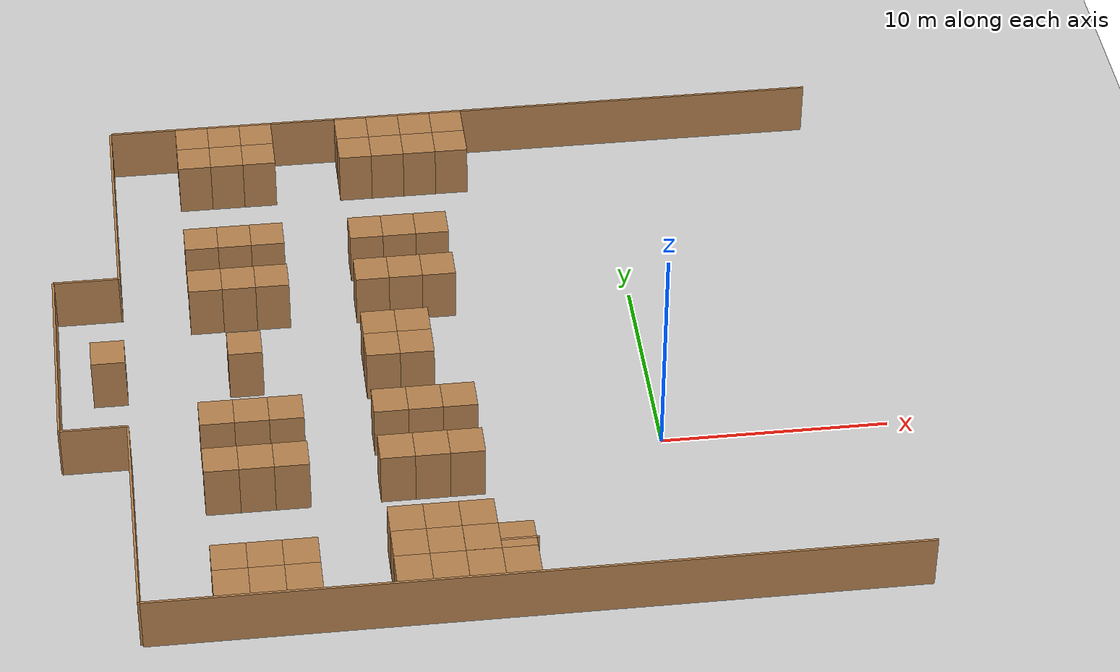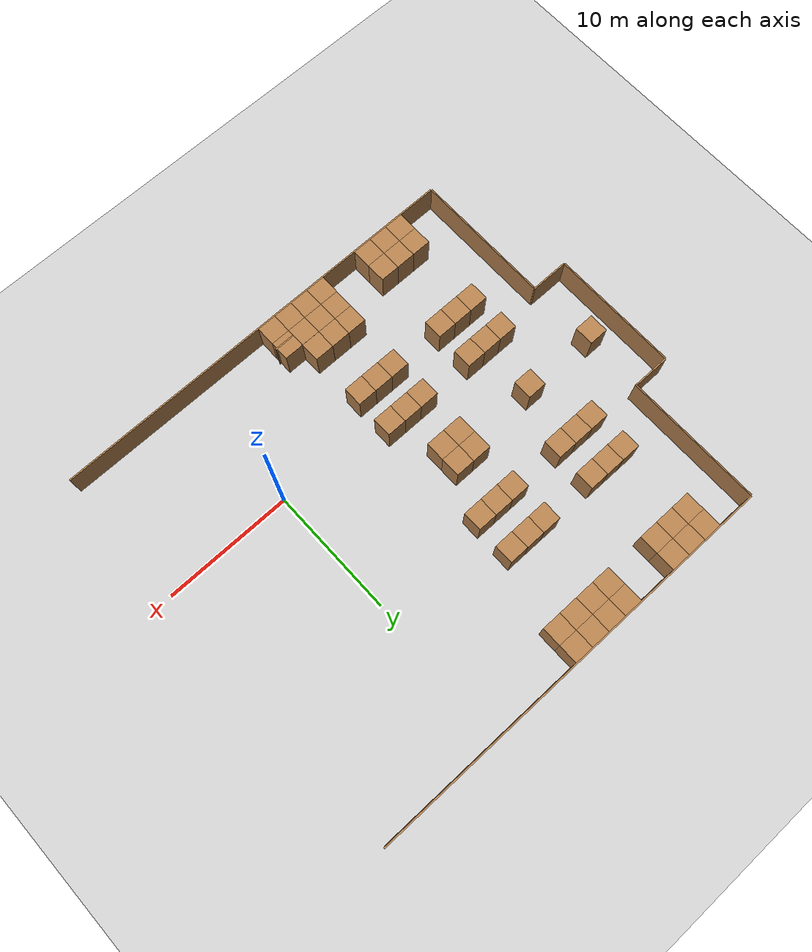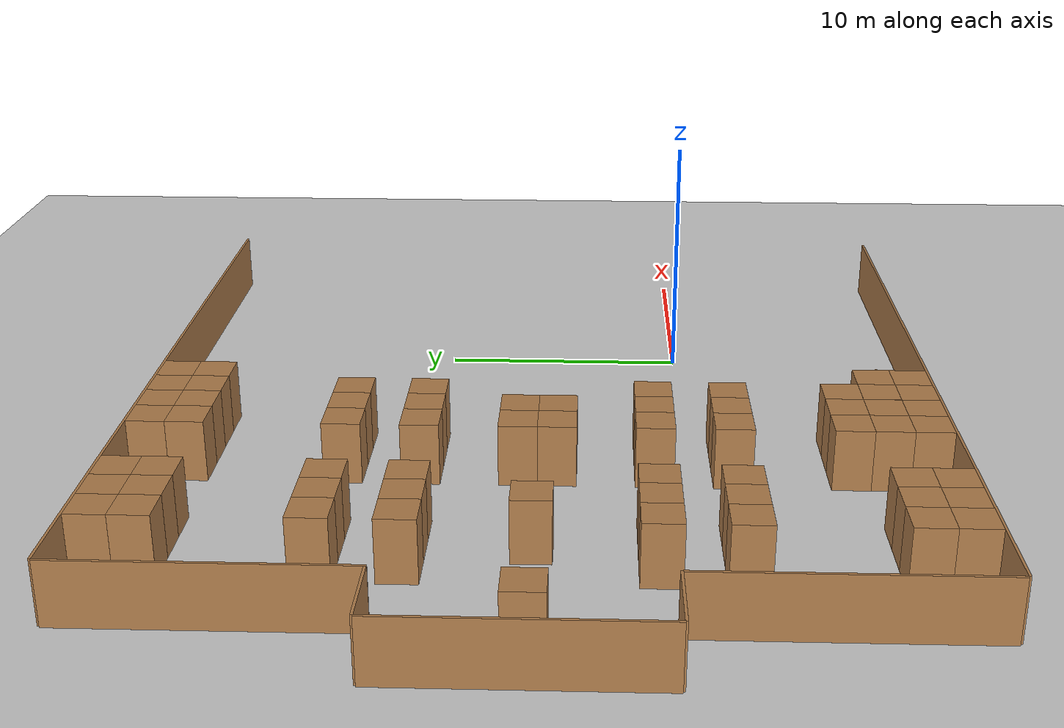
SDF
<sdf version="1.6">
 <world name="default">
  <model name="ground_plane">
   <static>1</static>
   <link name="link">
    <collision name="collision">
     <geometry><plane><normal>0 0 1</normal><size>100 100</size></plane></geometry>
     <surface><friction><ode><mu>100</mu><mu2>50</mu2></ode></friction></surface>
    </collision>
    <visual name="visual">
     <cast_shadows>0</cast_shadows>
     <geometry><plane><normal>0 0 1</normal><size>100 100</size></plane></geometry>
     <material>
      <script><uri>file://media/materials/scripts/gazebo.material</uri><name>Gazebo/Grey</name></script>
     </material>
    </visual>
   </link>
  </model>
  <model name="wall_1.5_1.5_4_clone_clone_4_clone_5">
   <pose>-7.25 -9.25 0 0 -0 0</pose>
   <link name="Wall_2">
    <collision name="Wall_2_Collision">
     <geometry><box><size>1.5 1.5 2.5</size></box></geometry>
     <pose>0 0 1.25 0 -0 0</pose>
    </collision>
    <visual name="Wall_2_Visual">
     <pose>0 0 1.25 0 -0 0</pose>
     <geometry><box><size>1.5 1.5 2.5</size></box></geometry>
     <material>
      <script><uri>file://media/materials/scripts/gazebo.material</uri><name>Gazebo/Wood</name></script>
      <ambient>1 1 1 1</ambient>
     </material>
    </visual>
   </link>
   <static>1</static>
  </model>
  <model name="wall_1.5_1.5_4_clone_clone_4_clone_6">
   <pose>-7.25 -7.75 0 0 -0 0</pose>
   <link name="Wall_2">
    <collision name="Wall_2_Collision">
     <geometry><box><size>1.5 1.5 2.5</size></box></geometry>
     <pose>0 0 1.25 0 -0 0</pose>
    </collision>
    <visual name="Wall_2_Visual">
     <pose>0 0 1.25 0 -0 0</pose>
     <geometry><box><size>1.5 1.5 2.5</size></box></geometry>
     <material>
      <script><uri>file://media/materials/scripts/gazebo.material</uri><name>Gazebo/Wood</name></script>
      <ambient>1 1 1 1</ambient>
     </material>
    </visual>
   </link>
   <static>1</static>
  </model>
  <model name="wall_1.5_1.5_4_clone_clone_4_clone_7">
   <pose>-8.75 -9.25 0 0 -0 0</pose>
   <link name="Wall_2">
    <collision name="Wall_2_Collision">
     <geometry><box><size>1.5 1.5 2.5</size></box></geometry>
     <pose>0 0 1.25 0 -0 0</pose>
    </collision>
    <visual name="Wall_2_Visual">
     <pose>0 0 1.25 0 -0 0</pose>
     <geometry><box><size>1.5 1.5 2.5</size></box></geometry>
     <material>
      <script><uri>file://media/materials/scripts/gazebo.material</uri><name>Gazebo/Wood</name></script>
      <ambient>1 1 1 1</ambient>
     </material>
    </visual>
   </link>
   <static>1</static>
  </model>
  <model name="wall_1.5_1.5_4_clone_clone_4_clone_8">
   <pose>-8.75 -7.75 0.005554 0 -0 0</pose>
   <link name="Wall_2">
    <collision name="Wall_2_Collision">
     <geometry><box><size>1.5 1.5 2.5</size></box></geometry>
     <pose>0 0 1.25 0 -0 0</pose>
    </collision>
    <visual name="Wall_2_Visual">
     <pose>0 0 1.25 0 -0 0</pose>
     <geometry><box><size>1.5 1.5 2.5</size></box></geometry>
     <material>
      <script><uri>file://media/materials/scripts/gazebo.material</uri><name>Gazebo/Wood</name></script>
      <ambient>1 1 1 1</ambient>
     </material>
    </visual>
   </link>
   <static>1</static>
  </model>
  <model name="wall_1.5_1.5_4_clone_clone_4_clone_7_clone">
   <pose>-10.25 -9.25 0 0 -0 0</pose>
   <link name="Wall_2">
    <collision name="Wall_2_Collision">
     <geometry><box><size>1.5 1.5 2.5</size></box></geometry>
     <pose>0 0 1.25 0 -0 0</pose>
    </collision>
    <visual name="Wall_2_Visual">
     <pose>0 0 1.25 0 -0 0</pose>
     <geometry><box><size>1.5 1.5 2.5</size></box></geometry>
     <material>
      <script><uri>file://media/materials/scripts/gazebo.material</uri><name>Gazebo/Wood</name></script>
      <ambient>1 1 1 1</ambient>
     </material>
    </visual>
   </link>
   <static>1</static>
  </model>
  <model name="wall_1.5_1.5_4_clone_clone_4_clone_7_clone_0">
   <pose>-10.25 -7.75 0 0 -0 0</pose>
   <link name="Wall_2">
    <collision name="Wall_2_Collision">
     <geometry><box><size>1.5 1.5 2.5</size></box></geometry>
     <pose>0 0 1.25 0 -0 0</pose>
    </collision>
    <visual name="Wall_2_Visual">
     <pose>0 0 1.25 0 -0 0</pose>
     <geometry><box><size>1.5 1.5 2.5</size></box></geometry>
     <material>
      <script><uri>file://media/materials/scripts/gazebo.material</uri><name>Gazebo/Wood</name></script>
      <ambient>1 1 1 1</ambient>
     </material>
    </visual>
   </link>
   <static>1</static>
  </model>
  <model name="wall_1.5_1.5_4_clone_clone_4_clone_7_clone_1">
   <pose>-10.25 -6.25 0 0 -0 0</pose>
   <link name="Wall_2">
    <collision name="Wall_2_Collision">
     <geometry><box><size>1.5 1.5 2.5</size></box></geometry>
     <pose>0 0 1.25 0 -0 0</pose>
    </collision>
    <visual name="Wall_2_Visual">
     <pose>0 0 1.25 0 -0 0</pose>
     <geometry><box><size>1.5 1.5 2.5</size></box></geometry>
     <material>
      <script><uri>file://media/materials/scripts/gazebo.material</uri><name>Gazebo/Wood</name></script>
      <ambient>1 1 1 1</ambient>
     </material>
    </visual>
   </link>
   <static>1</static>
  </model>
  <model name="wall_1.5_1.5_4_clone_clone_4_clone_7_clone_2">
   <pose>-8.75 -6.25 0 0 -0 0</pose>
   <link name="Wall_2">
    <collision name="Wall_2_Collision">
     <geometry><box><size>1.5 1.5 2.5</size></box></geometry>
     <pose>0 0 1.25 0 -0 0</pose>
    </collision>
    <visual name="Wall_2_Visual">
     <pose>0 0 1.25 0 -0 0</pose>
     <geometry><box><size>1.5 1.5 2.5</size></box></geometry>
     <material>
      <script><uri>file://media/materials/scripts/gazebo.material</uri><name>Gazebo/Wood</name></script>
      <ambient>1 1 1 1</ambient>
     </material>
    </visual>
   </link>
   <static>1</static>
  </model>
  <model name="wall_1.5_1.5_6">
   <pose>-11.75 -9.25 0 0 -0 0</pose>
   <link name="Wall_2">
    <collision name="Wall_2_Collision">
     <geometry><box><size>1.5 1.5 2.5</size></box></geometry>
     <pose>0 0 1.25 0 -0 0</pose>
    </collision>
    <visual name="Wall_2_Visual">
     <pose>0 0 1.25 0 -0 0</pose>
     <geometry><box><size>1.5 1.5 2.5</size></box></geometry>
     <material>
      <script><uri>file://media/materials/scripts/gazebo.material</uri><name>Gazebo/Wood</name></script>
      <ambient>1 1 1 1</ambient>
     </material>
    </visual>
   </link>
   <static>1</static>
  </model>
  <model name="wall_1.5_1.5_4_clone_clone_4_clone_7_clone_4">
   <pose>-11.75 -7.75 0 0 -0 0</pose>
   <link name="Wall_2">
    <collision name="Wall_2_Collision">
     <geometry><box><size>1.5 1.5 2.5</size></box></geometry>
     <pose>0 0 1.25 0 -0 0</pose>
    </collision>
    <visual name="Wall_2_Visual">
     <pose>0 0 1.25 0 -0 0</pose>
     <geometry><box><size>1.5 1.5 2.5</size></box></geometry>
     <material>
      <script><uri>file://media/materials/scripts/gazebo.material</uri><name>Gazebo/Wood</name></script>
      <ambient>1 1 1 1</ambient>
     </material>
    </visual>
   </link>
   <static>1</static>
  </model>
  <model name="wall_1.5_1.5_4_clone_clone_4_clone_7_clone_5">
   <pose>-11.75 -6.25 0 0 -0 0</pose>
   <link name="Wall_2">
    <collision name="Wall_2_Collision">
     <geometry><box><size>1.5 1.5 2.5</size></box></geometry>
     <pose>0 0 1.25 0 -0 0</pose>
    </collision>
    <visual name="Wall_2_Visual">
     <pose>0 0 1.25 0 -0 0</pose>
     <geometry><box><size>1.5 1.5 2.5</size></box></geometry>
     <material>
      <script><uri>file://media/materials/scripts/gazebo.material</uri><name>Gazebo/Wood</name></script>
      <ambient>1 1 1 1</ambient>
     </material>
    </visual>
   </link>
   <static>1</static>
  </model>
  <model name="wall_1.5_1.5_7">
   <pose>-8.75 -1.75 0 0 -0 0</pose>
   <link name="Wall_2">
    <collision name="Wall_2_Collision">
     <geometry><box><size>1.5 1.5 2.5</size></box></geometry>
     <pose>0 0 1.25 0 -0 0</pose>
    </collision>
    <visual name="Wall_2_Visual">
     <pose>0 0 1.25 0 -0 0</pose>
     <geometry><box><size>1.5 1.5 2.5</size></box></geometry>
     <material>
      <script><uri>file://media/materials/scripts/gazebo.material</uri><name>Gazebo/Wood</name></script>
      <ambient>1 1 1 1</ambient>
     </material>
    </visual>
   </link>
   <static>1</static>
  </model>
  <model name="wall_1.5_1.5_4_clone_clone_4_clone_7_clone_3">
   <pose>-10.25 -1.75 0 0 -0 0</pose>
   <link name="Wall_2">
    <collision name="Wall_2_Collision">
     <geometry><box><size>1.5 1.5 2.5</size></box></geometry>
     <pose>0 0 1.25 0 -0 0</pose>
    </collision>
    <visual name="Wall_2_Visual">
     <pose>0 0 1.25 0 -0 0</pose>
     <geometry><box><size>1.5 1.5 2.5</size></box></geometry>
     <material>
      <script><uri>file://media/materials/scripts/gazebo.material</uri><name>Gazebo/Wood</name></script>
      <ambient>1 1 1 1</ambient>
     </material>
    </visual>
   </link>
   <static>1</static>
  </model>
  <model name="wall_1.5_1.5_4_clone_clone_4_clone_7_clone_6">
   <pose>-11.75 -1.75 0 0 -0 0</pose>
   <link name="Wall_2">
    <collision name="Wall_2_Collision">
     <geometry><box><size>1.5 1.5 2.5</size></box></geometry>
     <pose>0 0 1.25 0 -0 0</pose>
    </collision>
    <visual name="Wall_2_Visual">
     <pose>0 0 1.25 0 -0 0</pose>
     <geometry><box><size>1.5 1.5 2.5</size></box></geometry>
     <material>
      <script><uri>file://media/materials/scripts/gazebo.material</uri><name>Gazebo/Wood</name></script>
      <ambient>1 1 1 1</ambient>
     </material>
    </visual>
   </link>
   <static>1</static>
  </model>
  <model name="wall_1.5_1.5_4_clone_clone_4_clone_7_clone_9">
   <pose>-16.25 -9.25 0 0 -0 0</pose>
   <link name="Wall_2">
    <collision name="Wall_2_Collision">
     <geometry><box><size>1.5 1.5 2.5</size></box></geometry>
     <pose>0 0 1.25 0 -0 0</pose>
    </collision>
    <visual name="Wall_2_Visual">
     <pose>0 0 1.25 0 -0 0</pose>
     <geometry><box><size>1.5 1.5 2.5</size></box></geometry>
     <material>
      <script><uri>file://media/materials/scripts/gazebo.material</uri><name>Gazebo/Wood</name></script>
      <ambient>1 1 1 1</ambient>
     </material>
    </visual>
   </link>
   <static>1</static>
  </model>
  <model name="wall_1.5_1.5_4_clone_clone_4_clone_7_clone_9_clone">
   <pose>-17.75 -9.25 0 0 -0 0</pose>
   <link name="Wall_2">
    <collision name="Wall_2_Collision">
     <geometry><box><size>1.5 1.5 2.5</size></box></geometry>
     <pose>0 0 1.25 0 -0 0</pose>
    </collision>
    <visual name="Wall_2_Visual">
     <pose>0 0 1.25 0 -0 0</pose>
     <geometry><box><size>1.5 1.5 2.5</size></box></geometry>
     <material>
      <script><uri>file://media/materials/scripts/gazebo.material</uri><name>Gazebo/Wood</name></script>
      <ambient>1 1 1 1</ambient>
     </material>
    </visual>
   </link>
   <static>1</static>
  </model>
  <model name="wall_1.5_1.5_4_clone_clone_4_clone_7_clone_9_clone_0">
   <pose>-19.25 -9.25 0 0 -0 0</pose>
   <link name="Wall_2">
    <collision name="Wall_2_Collision">
     <geometry><box><size>1.5 1.5 2.5</size></box></geometry>
     <pose>0 0 1.25 0 -0 0</pose>
    </collision>
    <visual name="Wall_2_Visual">
     <pose>0 0 1.25 0 -0 0</pose>
     <geometry><box><size>1.5 1.5 2.5</size></box></geometry>
     <material>
      <script><uri>file://media/materials/scripts/gazebo.material</uri><name>Gazebo/Wood</name></script>
      <ambient>1 1 1 1</ambient>
     </material>
    </visual>
   </link>
   <static>1</static>
  </model>
  <model name="wall_1.5_1.5_4_clone_clone_4_clone_7_clone_9_clone_1">
   <pose>-19.25 -7.75 0 0 -0 0</pose>
   <link name="Wall_2">
    <collision name="Wall_2_Collision">
     <geometry><box><size>1.5 1.5 2.5</size></box></geometry>
     <pose>0 0 1.25 0 -0 0</pose>
    </collision>
    <visual name="Wall_2_Visual">
     <pose>0 0 1.25 0 -0 0</pose>
     <geometry><box><size>1.5 1.5 2.5</size></box></geometry>
     <material>
      <script><uri>file://media/materials/scripts/gazebo.material</uri><name>Gazebo/Wood</name></script>
      <ambient>1 1 1 1</ambient>
     </material>
    </visual>
   </link>
   <static>1</static>
  </model>
  <model name="wall_1.5_1.5_4_clone_clone_4_clone_7_clone_9_clone_2">
   <pose>-17.75 -7.75 0 0 -0 0</pose>
   <link name="Wall_2">
    <collision name="Wall_2_Collision">
     <geometry><box><size>1.5 1.5 2.5</size></box></geometry>
     <pose>0 0 1.25 0 -0 0</pose>
    </collision>
    <visual name="Wall_2_Visual">
     <pose>0 0 1.25 0 -0 0</pose>
     <geometry><box><size>1.5 1.5 2.5</size></box></geometry>
     <material>
      <script><uri>file://media/materials/scripts/gazebo.material</uri><name>Gazebo/Wood</name></script>
      <ambient>1 1 1 1</ambient>
     </material>
    </visual>
   </link>
   <static>1</static>
  </model>
  <model name="wall_1.5_1.5_4_clone_clone_4_clone_7_clone_9_clone_3">
   <pose>-16.25 -7.75 0 0 -0 0</pose>
   <link name="Wall_2">
    <collision name="Wall_2_Collision">
     <geometry><box><size>1.5 1.5 2.5</size></box></geometry>
     <pose>0 0 1.25 0 -0 0</pose>
    </collision>
    <visual name="Wall_2_Visual">
     <pose>0 0 1.25 0 -0 0</pose>
     <geometry><box><size>1.5 1.5 2.5</size></box></geometry>
     <material>
      <script><uri>file://media/materials/scripts/gazebo.material</uri><name>Gazebo/Wood</name></script>
      <ambient>1 1 1 1</ambient>
     </material>
    </visual>
   </link>
   <static>1</static>
  </model>
  <model name="wall_1.5_1.5_4_clone_clone_4_clone_13">
   <pose>-8.75 1.25 0 0 -0 0</pose>
   <link name="Wall_2">
    <collision name="Wall_2_Collision">
     <geometry><box><size>1.5 1.5 2.5</size></box></geometry>
     <pose>0 0 1.25 0 -0 0</pose>
    </collision>
    <visual name="Wall_2_Visual">
     <pose>0 0 1.25 0 -0 0</pose>
     <geometry><box><size>1.5 1.5 2.5</size></box></geometry>
     <material>
      <script><uri>file://media/materials/scripts/gazebo.material</uri><name>Gazebo/Wood</name></script>
      <ambient>1 1 1 1</ambient>
     </material>
    </visual>
   </link>
   <static>1</static>
  </model>
  <model name="wall_1.5_1.5_4_clone_clone_4_clone_13_clone">
   <pose>-10.25 1.25 0 0 -0 0</pose>
   <link name="Wall_2">
    <collision name="Wall_2_Collision">
     <geometry><box><size>1.5 1.5 2.5</size></box></geometry>
     <pose>0 0 1.25 0 -0 0</pose>
    </collision>
    <visual name="Wall_2_Visual">
     <pose>0 0 1.25 0 -0 0</pose>
     <geometry><box><size>1.5 1.5 2.5</size></box></geometry>
     <material>
      <script><uri>file://media/materials/scripts/gazebo.material</uri><name>Gazebo/Wood</name></script>
      <ambient>1 1 1 1</ambient>
     </material>
    </visual>
   </link>
   <static>1</static>
  </model>
  <model name="wall_1.5_1.5_4_clone_clone_4_clone_13_clone_0">
   <pose>-11.75 1.25 0 0 -0 0</pose>
   <link name="Wall_2">
    <collision name="Wall_2_Collision">
     <geometry><box><size>1.5 1.5 2.5</size></box></geometry>
     <pose>0 0 1.25 0 -0 0</pose>
    </collision>
    <visual name="Wall_2_Visual">
     <pose>0 0 1.25 0 -0 0</pose>
     <geometry><box><size>1.5 1.5 2.5</size></box></geometry>
     <material>
      <script><uri>file://media/materials/scripts/gazebo.material</uri><name>Gazebo/Wood</name></script>
      <ambient>1 1 1 1</ambient>
     </material>
    </visual>
   </link>
   <static>1</static>
  </model>
  <model name="wall_1.5_1.5_4_clone_clone_4_clone_7_clone_9_clone_1_clone">
   <pose>-16.25 -1.75 0 0 -0 0</pose>
   <link name="Wall_2">
    <collision name="Wall_2_Collision">
     <geometry><box><size>1.5 1.5 2.5</size></box></geometry>
     <pose>0 0 1.25 0 -0 0</pose>
    </collision>
    <visual name="Wall_2_Visual">
     <pose>0 0 1.25 0 -0 0</pose>
     <geometry><box><size>1.5 1.5 2.5</size></box></geometry>
     <material>
      <script><uri>file://media/materials/scripts/gazebo.material</uri><name>Gazebo/Wood</name></script>
      <ambient>1 1 1 1</ambient>
     </material>
    </visual>
   </link>
   <static>1</static>
  </model>
  <model name="wall_1.5_1.5_4_clone_clone_4_clone_7_clone_9_clone_1_clone_clone">
   <pose>-17.75 -1.75 0 0 -0 0</pose>
   <link name="Wall_2">
    <collision name="Wall_2_Collision">
     <geometry><box><size>1.5 1.5 2.5</size></box></geometry>
     <pose>0 0 1.25 0 -0 0</pose>
    </collision>
    <visual name="Wall_2_Visual">
     <pose>0 0 1.25 0 -0 0</pose>
     <geometry><box><size>1.5 1.5 2.5</size></box></geometry>
     <material>
      <script><uri>file://media/materials/scripts/gazebo.material</uri><name>Gazebo/Wood</name></script>
      <ambient>1 1 1 1</ambient>
     </material>
    </visual>
   </link>
   <static>1</static>
  </model>
  <model name="wall_1.5_1.5_4_clone_clone_4_clone_7_clone_9_clone_1_clone_clone_0">
   <pose>-19.25 -1.75 0 0 -0 0</pose>
   <link name="Wall_2">
    <collision name="Wall_2_Collision">
     <geometry><box><size>1.5 1.5 2.5</size></box></geometry>
     <pose>0 0 1.25 0 -0 0</pose>
    </collision>
    <visual name="Wall_2_Visual">
     <pose>0 0 1.25 0 -0 0</pose>
     <geometry><box><size>1.5 1.5 2.5</size></box></geometry>
     <material>
      <script><uri>file://media/materials/scripts/gazebo.material</uri><name>Gazebo/Wood</name></script>
      <ambient>1 1 1 1</ambient>
     </material>
    </visual>
   </link>
   <static>1</static>
  </model>
  <model name="wall_1.5_1.5_4_clone_clone_4_clone_7_clone_9_clone_1_clone_clone_1">
   <pose>-16.25 1.25 0 0 -0 0</pose>
   <link name="Wall_2">
    <collision name="Wall_2_Collision">
     <geometry><box><size>1.5 1.5 2.5</size></box></geometry>
     <pose>0 0 1.25 0 -0 0</pose>
    </collision>
    <visual name="Wall_2_Visual">
     <pose>0 0 1.25 0 -0 0</pose>
     <geometry><box><size>1.5 1.5 2.5</size></box></geometry>
     <material>
      <script><uri>file://media/materials/scripts/gazebo.material</uri><name>Gazebo/Wood</name></script>
      <ambient>1 1 1 1</ambient>
     </material>
    </visual>
   </link>
   <static>1</static>
  </model>
  <model name="wall_1.5_1.5_4_clone_clone_4_clone_7_clone_9_clone_1_clone_clone_1_clone">
   <pose>-17.75 1.25 0 0 -0 0</pose>
   <link name="Wall_2">
    <collision name="Wall_2_Collision">
     <geometry><box><size>1.5 1.5 2.5</size></box></geometry>
     <pose>0 0 1.25 0 -0 0</pose>
    </collision>
    <visual name="Wall_2_Visual">
     <pose>0 0 1.25 0 -0 0</pose>
     <geometry><box><size>1.5 1.5 2.5</size></box></geometry>
     <material>
      <script><uri>file://media/materials/scripts/gazebo.material</uri><name>Gazebo/Wood</name></script>
      <ambient>1 1 1 1</ambient>
     </material>
    </visual>
   </link>
   <static>1</static>
  </model>
  <model name="wall_1.5_1.5_4_clone_clone_4_clone_7_clone_9_clone_1_clone_clone_1_clone_0">
   <pose>-19.25 1.25 0 0 -0 0</pose>
   <link name="Wall_2">
    <collision name="Wall_2_Collision">
     <geometry><box><size>1.5 1.5 2.5</size></box></geometry>
     <pose>0 0 1.25 0 -0 0</pose>
    </collision>
    <visual name="Wall_2_Visual">
     <pose>0 0 1.25 0 -0 0</pose>
     <geometry><box><size>1.5 1.5 2.5</size></box></geometry>
     <material>
      <script><uri>file://media/materials/scripts/gazebo.material</uri><name>Gazebo/Wood</name></script>
      <ambient>1 1 1 1</ambient>
     </material>
    </visual>
   </link>
   <static>1</static>
  </model>
  <model name="wall_1.5_1.5_clone_clone_clone_clone_clone_clone_clone_clone_clone_1_clone_6">
   <pose>-7.25 19.25 0 0 -0 0</pose>
   <link name="Wall_2">
    <collision name="Wall_2_Collision">
     <geometry><box><size>1.5 1.5 2.5</size></box></geometry>
     <pose>0 0 1.25 0 -0 0</pose>
    </collision>
    <visual name="Wall_2_Visual">
     <pose>0 0 1.25 0 -0 0</pose>
     <geometry><box><size>1.5 1.5 2.5</size></box></geometry>
     <material>
      <script><uri>file://media/materials/scripts/gazebo.material</uri><name>Gazebo/Wood</name></script>
      <ambient>1 1 1 1</ambient>
     </material>
    </visual>
   </link>
   <static>1</static>
  </model>
  <model name="wall_1.5_1.5_clone_clone_clone_clone_clone_clone_clone_clone_clone_1_clone_7">
   <pose>-8.75 19.25 0 0 -0 0</pose>
   <link name="Wall_2">
    <collision name="Wall_2_Collision">
     <geometry><box><size>1.5 1.5 2.5</size></box></geometry>
     <pose>0 0 1.25 0 -0 0</pose>
    </collision>
    <visual name="Wall_2_Visual">
     <pose>0 0 1.25 0 -0 0</pose>
     <geometry><box><size>1.5 1.5 2.5</size></box></geometry>
     <material>
      <script><uri>file://media/materials/scripts/gazebo.material</uri><name>Gazebo/Wood</name></script>
      <ambient>1 1 1 1</ambient>
     </material>
    </visual>
   </link>
   <static>1</static>
  </model>
  <model name="wall_1.5_1.5_clone_clone_clone_clone_clone_clone_clone_clone_clone_1_clone_8">
   <pose>-10.25 19.25 0 0 -0 0</pose>
   <link name="Wall_2">
    <collision name="Wall_2_Collision">
     <geometry><box><size>1.5 1.5 2.5</size></box></geometry>
     <pose>0 0 1.25 0 -0 0</pose>
    </collision>
    <visual name="Wall_2_Visual">
     <pose>0 0 1.25 0 -0 0</pose>
     <geometry><box><size>1.5 1.5 2.5</size></box></geometry>
     <material>
      <script><uri>file://media/materials/scripts/gazebo.material</uri><name>Gazebo/Wood</name></script>
      <ambient>1 1 1 1</ambient>
     </material>
    </visual>
   </link>
   <static>1</static>
  </model>
  <model name="wall_1.5_1.5_clone_clone_clone_clone_clone_clone_clone_clone_clone_1_clone_9">
   <pose>-11.75 19.25 0 0 -0 0</pose>
   <link name="Wall_2">
    <collision name="Wall_2_Collision">
     <geometry><box><size>1.5 1.5 2.5</size></box></geometry>
     <pose>0 0 1.25 0 -0 0</pose>
    </collision>
    <visual name="Wall_2_Visual">
     <pose>0 0 1.25 0 -0 0</pose>
     <geometry><box><size>1.5 1.5 2.5</size></box></geometry>
     <material>
      <script><uri>file://media/materials/scripts/gazebo.material</uri><name>Gazebo/Wood</name></script>
      <ambient>1 1 1 1</ambient>
     </material>
    </visual>
   </link>
   <static>1</static>
  </model>
  <model name="wall_1.5_1.5_clone_clone_clone_clone_clone_clone_clone_clone_clone_1_clone_10">
   <pose>-11.75 20.75 0 0 -0 0</pose>
   <link name="Wall_2">
    <collision name="Wall_2_Collision">
     <geometry><box><size>1.5 1.5 2.5</size></box></geometry>
     <pose>0 0 1.25 0 -0 0</pose>
    </collision>
    <visual name="Wall_2_Visual">
     <pose>0 0 1.25 0 -0 0</pose>
     <geometry><box><size>1.5 1.5 2.5</size></box></geometry>
     <material>
      <script><uri>file://media/materials/scripts/gazebo.material</uri><name>Gazebo/Wood</name></script>
      <ambient>1 1 1 1</ambient>
     </material>
    </visual>
   </link>
   <static>1</static>
  </model>
  <model name="wall_1.5_1.5_clone_clone_clone_clone_clone_clone_clone_clone_clone_1_clone_11">
   <pose>-10.25 20.75 0 0 -0 0</pose>
   <link name="Wall_2">
    <collision name="Wall_2_Collision">
     <geometry><box><size>1.5 1.5 2.5</size></box></geometry>
     <pose>0 0 1.25 0 -0 0</pose>
    </collision>
    <visual name="Wall_2_Visual">
     <pose>0 0 1.25 0 -0 0</pose>
     <geometry><box><size>1.5 1.5 2.5</size></box></geometry>
     <material>
      <script><uri>file://media/materials/scripts/gazebo.material</uri><name>Gazebo/Wood</name></script>
      <ambient>1 1 1 1</ambient>
     </material>
    </visual>
   </link>
   <static>1</static>
  </model>
  <model name="wall_1.5_1.5_clone_clone_clone_clone_clone_clone_clone_clone_clone_1_clone_12">
   <pose>-8.75 20.75 0 0 -0 0</pose>
   <link name="Wall_2">
    <collision name="Wall_2_Collision">
     <geometry><box><size>1.5 1.5 2.5</size></box></geometry>
     <pose>0 0 1.25 0 -0 0</pose>
    </collision>
    <visual name="Wall_2_Visual">
     <pose>0 0 1.25 0 -0 0</pose>
     <geometry><box><size>1.5 1.5 2.5</size></box></geometry>
     <material>
      <script><uri>file://media/materials/scripts/gazebo.material</uri><name>Gazebo/Wood</name></script>
      <ambient>1 1 1 1</ambient>
     </material>
    </visual>
   </link>
   <static>1</static>
  </model>
  <model name="wall_1.5_1.5_clone_clone_clone_clone_clone_clone_clone_clone_clone_1_clone_13">
   <pose>-7.25 20.75 0 0 -0 0</pose>
   <link name="Wall_2">
    <collision name="Wall_2_Collision">
     <geometry><box><size>1.5 1.5 2.5</size></box></geometry>
     <pose>0 0 1.25 0 -0 0</pose>
    </collision>
    <visual name="Wall_2_Visual">
     <pose>0 0 1.25 0 -0 0</pose>
     <geometry><box><size>1.5 1.5 2.5</size></box></geometry>
     <material>
      <script><uri>file://media/materials/scripts/gazebo.material</uri><name>Gazebo/Wood</name></script>
      <ambient>1 1 1 1</ambient>
     </material>
    </visual>
   </link>
   <static>1</static>
  </model>
  <model name="wall_1.5_1.5_clone_clone_clone_clone_clone_clone_clone_clone_clone_1_clone_15">
   <pose>-8.75 13.25 0 0 -0 0</pose>
   <link name="Wall_2">
    <collision name="Wall_2_Collision">
     <geometry><box><size>1.5 1.5 2.5</size></box></geometry>
     <pose>0 0 1.25 0 -0 0</pose>
    </collision>
    <visual name="Wall_2_Visual">
     <pose>0 0 1.25 0 -0 0</pose>
     <geometry><box><size>1.5 1.5 2.5</size></box></geometry>
     <material>
      <script><uri>file://media/materials/scripts/gazebo.material</uri><name>Gazebo/Wood</name></script>
      <ambient>1 1 1 1</ambient>
     </material>
    </visual>
   </link>
   <static>1</static>
  </model>
  <model name="wall_1.5_1.5_clone_clone_clone_clone_clone_clone_clone_clone_clone_1_clone_16">
   <pose>-10.25 13.25 0 0 -0 0</pose>
   <link name="Wall_2">
    <collision name="Wall_2_Collision">
     <geometry><box><size>1.5 1.5 2.5</size></box></geometry>
     <pose>0 0 1.25 0 -0 0</pose>
    </collision>
    <visual name="Wall_2_Visual">
     <pose>0 0 1.25 0 -0 0</pose>
     <geometry><box><size>1.5 1.5 2.5</size></box></geometry>
     <material>
      <script><uri>file://media/materials/scripts/gazebo.material</uri><name>Gazebo/Wood</name></script>
      <ambient>1 1 1 1</ambient>
     </material>
    </visual>
   </link>
   <static>1</static>
  </model>
  <model name="wall_1.5_1.5_clone_clone_clone_clone_clone_clone_clone_clone_clone_1_clone_17">
   <pose>-11.75 13.25 0 0 -0 0</pose>
   <link name="Wall_2">
    <collision name="Wall_2_Collision">
     <geometry><box><size>1.5 1.5 2.5</size></box></geometry>
     <pose>0 0 1.25 0 -0 0</pose>
    </collision>
    <visual name="Wall_2_Visual">
     <pose>0 0 1.25 0 -0 0</pose>
     <geometry><box><size>1.5 1.5 2.5</size></box></geometry>
     <material>
      <script><uri>file://media/materials/scripts/gazebo.material</uri><name>Gazebo/Wood</name></script>
      <ambient>1 1 1 1</ambient>
     </material>
    </visual>
   </link>
   <static>1</static>
  </model>
  <model name="wall_1.5_1.5_clone_clone_clone_clone_clone_clone_clone_clone_clone_1_clone_18">
   <pose>-8.75 10.25 0 0 -0 0</pose>
   <link name="Wall_2">
    <collision name="Wall_2_Collision">
     <geometry><box><size>1.5 1.5 2.5</size></box></geometry>
     <pose>0 0 1.25 0 -0 0</pose>
    </collision>
    <visual name="Wall_2_Visual">
     <pose>0 0 1.25 0 -0 0</pose>
     <geometry><box><size>1.5 1.5 2.5</size></box></geometry>
     <material>
      <script><uri>file://media/materials/scripts/gazebo.material</uri><name>Gazebo/Wood</name></script>
      <ambient>1 1 1 1</ambient>
     </material>
    </visual>
   </link>
   <static>1</static>
  </model>
  <model name="wall_1.5_1.5_clone_clone_clone_clone_clone_clone_clone_clone_clone_1_clone_19">
   <pose>-10.25 10.25 0 0 -0 0</pose>
   <link name="Wall_2">
    <collision name="Wall_2_Collision">
     <geometry><box><size>1.5 1.5 2.5</size></box></geometry>
     <pose>0 0 1.25 0 -0 0</pose>
    </collision>
    <visual name="Wall_2_Visual">
     <pose>0 0 1.25 0 -0 0</pose>
     <geometry><box><size>1.5 1.5 2.5</size></box></geometry>
     <material>
      <script><uri>file://media/materials/scripts/gazebo.material</uri><name>Gazebo/Wood</name></script>
      <ambient>1 1 1 1</ambient>
     </material>
    </visual>
   </link>
   <static>1</static>
  </model>
  <model name="wall_1.5_1.5_clone_clone_clone_clone_clone_clone_clone_clone_clone_1_clone_20">
   <pose>-11.75 10.25 0 0 -0 0</pose>
   <link name="Wall_2">
    <collision name="Wall_2_Collision">
     <geometry><box><size>1.5 1.5 2.5</size></box></geometry>
     <pose>0 0 1.25 0 -0 0</pose>
    </collision>
    <visual name="Wall_2_Visual">
     <pose>0 0 1.25 0 -0 0</pose>
     <geometry><box><size>1.5 1.5 2.5</size></box></geometry>
     <material>
      <script><uri>file://media/materials/scripts/gazebo.material</uri><name>Gazebo/Wood</name></script>
      <ambient>1 1 1 1</ambient>
     </material>
    </visual>
   </link>
   <static>1</static>
  </model>
  <model name="wall_1.5_1.5_clone_clone_clone_clone_clone_clone_clone_clone_clone_1_clone_23">
   <pose>-16.25 20.75 0 0 -0 0</pose>
   <link name="Wall_2">
    <collision name="Wall_2_Collision">
     <geometry><box><size>1.5 1.5 2.5</size></box></geometry>
     <pose>0 0 1.25 0 -0 0</pose>
    </collision>
    <visual name="Wall_2_Visual">
     <pose>0 0 1.25 0 -0 0</pose>
     <geometry><box><size>1.5 1.5 2.5</size></box></geometry>
     <material>
      <script><uri>file://media/materials/scripts/gazebo.material</uri><name>Gazebo/Wood</name></script>
      <ambient>1 1 1 1</ambient>
     </material>
    </visual>
   </link>
   <static>1</static>
  </model>
  <model name="wall_1.5_1.5_clone_clone_clone_clone_clone_clone_clone_clone_clone_1_clone_23_clone">
   <pose>-16.25 19.25 0 0 -0 0</pose>
   <link name="Wall_2">
    <collision name="Wall_2_Collision">
     <geometry><box><size>1.5 1.5 2.5</size></box></geometry>
     <pose>0 0 1.25 0 -0 0</pose>
    </collision>
    <visual name="Wall_2_Visual">
     <pose>0 0 1.25 0 -0 0</pose>
     <geometry><box><size>1.5 1.5 2.5</size></box></geometry>
     <material>
      <script><uri>file://media/materials/scripts/gazebo.material</uri><name>Gazebo/Wood</name></script>
      <ambient>1 1 1 1</ambient>
     </material>
    </visual>
   </link>
   <static>1</static>
  </model>
  <model name="wall_1.5_1.5_clone_clone_clone_clone_clone_clone_clone_clone_clone_1_clone_23_clone_0">
   <pose>-17.75 20.75 0 0 -0 0</pose>
   <link name="Wall_2">
    <collision name="Wall_2_Collision">
     <geometry><box><size>1.5 1.5 2.5</size></box></geometry>
     <pose>0 0 1.25 0 -0 0</pose>
    </collision>
    <visual name="Wall_2_Visual">
     <pose>0 0 1.25 0 -0 0</pose>
     <geometry><box><size>1.5 1.5 2.5</size></box></geometry>
     <material>
      <script><uri>file://media/materials/scripts/gazebo.material</uri><name>Gazebo/Wood</name></script>
      <ambient>1 1 1 1</ambient>
     </material>
    </visual>
   </link>
   <static>1</static>
  </model>
  <model name="wall_1.5_1.5_clone_clone_clone_clone_clone_clone_clone_clone_clone_1_clone_23_clone_1">
   <pose>-17.75 19.25 0 0 -0 0</pose>
   <link name="Wall_2">
    <collision name="Wall_2_Collision">
     <geometry><box><size>1.5 1.5 2.5</size></box></geometry>
     <pose>0 0 1.25 0 -0 0</pose>
    </collision>
    <visual name="Wall_2_Visual">
     <pose>0 0 1.25 0 -0 0</pose>
     <geometry><box><size>1.5 1.5 2.5</size></box></geometry>
     <material>
      <script><uri>file://media/materials/scripts/gazebo.material</uri><name>Gazebo/Wood</name></script>
      <ambient>1 1 1 1</ambient>
     </material>
    </visual>
   </link>
   <static>1</static>
  </model>
  <model name="wall_1.5_1.5_clone_clone_clone_clone_clone_clone_clone_clone_clone_1_clone_23_clone_2">
   <pose>-19.25 19.25 0 0 -0 0</pose>
   <link name="Wall_2">
    <collision name="Wall_2_Collision">
     <geometry><box><size>1.5 1.5 2.5</size></box></geometry>
     <pose>0 0 1.25 0 -0 0</pose>
    </collision>
    <visual name="Wall_2_Visual">
     <pose>0 0 1.25 0 -0 0</pose>
     <geometry><box><size>1.5 1.5 2.5</size></box></geometry>
     <material>
      <script><uri>file://media/materials/scripts/gazebo.material</uri><name>Gazebo/Wood</name></script>
      <ambient>1 1 1 1</ambient>
     </material>
    </visual>
   </link>
   <static>1</static>
  </model>
  <model name="wall_1.5_1.5_clone_clone_clone_clone_clone_clone_clone_clone_clone_1_clone_23_clone_3">
   <pose>-19.25 20.75 0 0 -0 0</pose>
   <link name="Wall_2">
    <collision name="Wall_2_Collision">
     <geometry><box><size>1.5 1.5 2.5</size></box></geometry>
     <pose>0 0 1.25 0 -0 0</pose>
    </collision>
    <visual name="Wall_2_Visual">
     <pose>0 0 1.25 0 -0 0</pose>
     <geometry><box><size>1.5 1.5 2.5</size></box></geometry>
     <material>
      <script><uri>file://media/materials/scripts/gazebo.material</uri><name>Gazebo/Wood</name></script>
      <ambient>1 1 1 1</ambient>
     </material>
    </visual>
   </link>
   <static>1</static>
  </model>
  <model name="wall_1.5_1.5_clone_clone_clone_clone_clone_clone_clone_clone_clone_1_clone_23_clone_4">
   <pose>-16.25 13.25 0 0 -0 0</pose>
   <link name="Wall_2">
    <collision name="Wall_2_Collision">
     <geometry><box><size>1.5 1.5 2.5</size></box></geometry>
     <pose>0 0 1.25 0 -0 0</pose>
    </collision>
    <visual name="Wall_2_Visual">
     <pose>0 0 1.25 0 -0 0</pose>
     <geometry><box><size>1.5 1.5 2.5</size></box></geometry>
     <material>
      <script><uri>file://media/materials/scripts/gazebo.material</uri><name>Gazebo/Wood</name></script>
      <ambient>1 1 1 1</ambient>
     </material>
    </visual>
   </link>
   <static>1</static>
  </model>
  <model name="wall_1.5_1.5_clone_clone_clone_clone_clone_clone_clone_clone_clone_1_clone_23_clone_5">
   <pose>-16.25 10.25 0 0 -0 0</pose>
   <link name="Wall_2">
    <collision name="Wall_2_Collision">
     <geometry><box><size>1.5 1.5 2.5</size></box></geometry>
     <pose>0 0 1.25 0 -0 0</pose>
    </collision>
    <visual name="Wall_2_Visual">
     <pose>0 0 1.25 0 -0 0</pose>
     <geometry><box><size>1.5 1.5 2.5</size></box></geometry>
     <material>
      <script><uri>file://media/materials/scripts/gazebo.material</uri><name>Gazebo/Wood</name></script>
      <ambient>1 1 1 1</ambient>
     </material>
    </visual>
   </link>
   <static>1</static>
  </model>
  <model name="wall_1.5_1.5_clone_clone_clone_clone_clone_clone_clone_clone_clone_1_clone_23_clone_5_clone">
   <pose>-17.75 10.25 0 0 -0 0</pose>
   <link name="Wall_2">
    <collision name="Wall_2_Collision">
     <geometry><box><size>1.5 1.5 2.5</size></box></geometry>
     <pose>0 0 1.25 0 -0 0</pose>
    </collision>
    <visual name="Wall_2_Visual">
     <pose>0 0 1.25 0 -0 0</pose>
     <geometry><box><size>1.5 1.5 2.5</size></box></geometry>
     <material>
      <script><uri>file://media/materials/scripts/gazebo.material</uri><name>Gazebo/Wood</name></script>
      <ambient>1 1 1 1</ambient>
     </material>
    </visual>
   </link>
   <static>1</static>
  </model>
  <model name="wall_1.5_1.5_clone_clone_clone_clone_clone_clone_clone_clone_clone_1_clone_23_clone_5_clone_0">
   <pose>-17.75 13.25 0 0 -0 0</pose>
   <link name="Wall_2">
    <collision name="Wall_2_Collision">
     <geometry><box><size>1.5 1.5 2.5</size></box></geometry>
     <pose>0 0 1.25 0 -0 0</pose>
    </collision>
    <visual name="Wall_2_Visual">
     <pose>0 0 1.25 0 -0 0</pose>
     <geometry><box><size>1.5 1.5 2.5</size></box></geometry>
     <material>
      <script><uri>file://media/materials/scripts/gazebo.material</uri><name>Gazebo/Wood</name></script>
      <ambient>1 1 1 1</ambient>
     </material>
    </visual>
   </link>
   <static>1</static>
  </model>
  <model name="wall_1.5_1.5_clone_clone_clone_clone_clone_clone_clone_clone_clone_1_clone_23_clone_5_clone_1">
   <pose>-19.25 13.25 0 0 -0 0</pose>
   <link name="Wall_2">
    <collision name="Wall_2_Collision">
     <geometry><box><size>1.5 1.5 2.5</size></box></geometry>
     <pose>0 0 1.25 0 -0 0</pose>
    </collision>
    <visual name="Wall_2_Visual">
     <pose>0 0 1.25 0 -0 0</pose>
     <geometry><box><size>1.5 1.5 2.5</size></box></geometry>
     <material>
      <script><uri>file://media/materials/scripts/gazebo.material</uri><name>Gazebo/Wood</name></script>
      <ambient>1 1 1 1</ambient>
     </material>
    </visual>
   </link>
   <static>1</static>
  </model>
  <model name="wall_1.5_1.5_clone_clone_clone_clone_clone_clone_clone_clone_clone_1_clone_23_clone_5_clone_2">
   <pose>-19.25 10.25 0 0 -0 0</pose>
   <link name="Wall_2">
    <collision name="Wall_2_Collision">
     <geometry><box><size>1.5 1.5 2.5</size></box></geometry>
     <pose>0 0 1.25 0 -0 0</pose>
    </collision>
    <visual name="Wall_2_Visual">
     <pose>0 0 1.25 0 -0 0</pose>
     <geometry><box><size>1.5 1.5 2.5</size></box></geometry>
     <material>
      <script><uri>file://media/materials/scripts/gazebo.material</uri><name>Gazebo/Wood</name></script>
      <ambient>1 1 1 1</ambient>
     </material>
    </visual>
   </link>
   <static>1</static>
  </model>
  <model name="wall_1.5_1.5_4_clone_clone_4_clone_13_clone_0_clone_clone">
   <pose>-10.25 5 0 0 -0 0</pose>
   <link name="Wall_2">
    <collision name="Wall_2_Collision">
     <geometry><box><size>1.5 1.5 2.5</size></box></geometry>
     <pose>0 0 1.25 0 -0 0</pose>
    </collision>
    <visual name="Wall_2_Visual">
     <pose>0 0 1.25 0 -0 0</pose>
     <geometry><box><size>1.5 1.5 2.5</size></box></geometry>
     <material>
      <script><uri>file://media/materials/scripts/gazebo.material</uri><name>Gazebo/Wood</name></script>
      <ambient>1 1 1 1</ambient>
     </material>
    </visual>
   </link>
   <static>1</static>
  </model>
  <model name="wall_1.5_1.5_4_clone_clone_4_clone_13_clone_0_clone_clone_0">
   <pose>-10.25 6.5 0 0 -0 0</pose>
   <link name="Wall_2">
    <collision name="Wall_2_Collision">
     <geometry><box><size>1.5 1.5 2.5</size></box></geometry>
     <pose>0 0 1.25 0 -0 0</pose>
    </collision>
    <visual name="Wall_2_Visual">
     <pose>0 0 1.25 0 -0 0</pose>
     <geometry><box><size>1.5 1.5 2.5</size></box></geometry>
     <material>
      <script><uri>file://media/materials/scripts/gazebo.material</uri><name>Gazebo/Wood</name></script>
      <ambient>1 1 1 1</ambient>
     </material>
    </visual>
   </link>
   <static>1</static>
  </model>
  <model name="wall_1.5_1.5_4_clone_clone_4_clone_13_clone_0_clone_clone_clone">
   <pose>-11.75 5 0 0 -0 0</pose>
   <link name="Wall_2">
    <collision name="Wall_2_Collision">
     <geometry><box><size>1.5 1.5 2.5</size></box></geometry>
     <pose>0 0 1.25 0 -0 0</pose>
    </collision>
    <visual name="Wall_2_Visual">
     <pose>0 0 1.25 0 -0 0</pose>
     <geometry><box><size>1.5 1.5 2.5</size></box></geometry>
     <material>
      <script><uri>file://media/materials/scripts/gazebo.material</uri><name>Gazebo/Wood</name></script>
      <ambient>1 1 1 1</ambient>
     </material>
    </visual>
   </link>
   <static>1</static>
  </model>
  <model name="wall_1.5_1.5_4_clone_clone_4_clone_13_clone_0_clone_clone_clone_0">
   <pose>-11.75 6.5 0 0 -0 0</pose>
   <link name="Wall_2">
    <collision name="Wall_2_Collision">
     <geometry><box><size>1.5 1.5 2.5</size></box></geometry>
     <pose>0 0 1.25 0 -0 0</pose>
    </collision>
    <visual name="Wall_2_Visual">
     <pose>0 0 1.25 0 -0 0</pose>
     <geometry><box><size>1.5 1.5 2.5</size></box></geometry>
     <material>
      <script><uri>file://media/materials/scripts/gazebo.material</uri><name>Gazebo/Wood</name></script>
      <ambient>1 1 1 1</ambient>
     </material>
    </visual>
   </link>
   <static>1</static>
  </model>
  <model name="wall_1.5_1.5_4_clone_clone_4_clone_13_clone_0_clone_clone_clone_1_clone_1">
   <pose>-23.75 5.75 0 0 -0 0</pose>
   <link name="Wall_2">
    <collision name="Wall_2_Collision">
     <geometry><box><size>1.5 1.5 2.5</size></box></geometry>
     <pose>0 0 1.25 0 -0 0</pose>
    </collision>
    <visual name="Wall_2_Visual">
     <pose>0 0 1.25 0 -0 0</pose>
     <geometry><box><size>1.5 1.5 2.5</size></box></geometry>
     <material>
      <script><uri>file://media/materials/scripts/gazebo.material</uri><name>Gazebo/Wood</name></script>
      <ambient>1 1 1 1</ambient>
     </material>
    </visual>
   </link>
   <static>1</static>
  </model>
  <model name="wall_1.5_1.5_4_clone_clone_4_clone_13_clone_0_clone_clone_clone_1_clone_1_clone">
   <pose>-17.75 5.75 0 0 -0 0</pose>
   <link name="Wall_2">
    <collision name="Wall_2_Collision">
     <geometry><box><size>1.5 1.5 2.5</size></box></geometry>
     <pose>0 0 1.25 0 -0 0</pose>
    </collision>
    <visual name="Wall_2_Visual">
     <pose>0 0 1.25 0 -0 0</pose>
     <geometry><box><size>1.5 1.5 2.5</size></box></geometry>
     <material>
      <script><uri>file://media/materials/scripts/gazebo.material</uri><name>Gazebo/Wood</name></script>
      <ambient>1 1 1 1</ambient>
     </material>
    </visual>
   </link>
   <static>1</static>
  </model>
  <model name="wall_33_1">
   <pose>-6.5 -10.05 0 0 -0 0</pose>
   <link name="Wall_13">
    <collision name="Wall_13_Collision">
     <geometry><box><size>33 0.1 2.5</size></box></geometry>
     <pose>0 0 1.25 0 -0 0</pose>
    </collision>
    <visual name="Wall_13_Visual">
     <pose>0 0 1.25 0 -0 0</pose>
     <geometry><box><size>33 0.1 2.5</size></box></geometry>
     <material>
      <script><uri>file://media/materials/scripts/gazebo.material</uri><name>Gazebo/Wood</name></script>
      <ambient>1 1 1 1</ambient>
     </material>
    </visual>
   </link>
   <static>1</static>
  </model>
  <model name="wall_33_1_clone">
   <pose>-6.5 21.55 0 0 -0 0</pose>
   <link name="Wall_13">
    <collision name="Wall_13_Collision">
     <geometry><box><size>33 0.1 2.5</size></box></geometry>
     <pose>0 0 1.25 0 -0 0</pose>
    </collision>
    <visual name="Wall_13_Visual">
     <pose>0 0 1.25 0 -0 0</pose>
     <geometry><box><size>33 0.1 2.5</size></box></geometry>
     <material>
      <script><uri>file://media/materials/scripts/gazebo.material</uri><name>Gazebo/Wood</name></script>
      <ambient>1 1 1 1</ambient>
     </material>
    </visual>
   </link>
   <static>1</static>
  </model>
  <model name="wall_10.75_0">
   <pose>-23.05 -4.625 0 0 -0 1.5707</pose>
   <link name="Wall_15">
    <collision name="Wall_15_Collision">
     <geometry><box><size>10.75 0.1 2.5</size></box></geometry>
     <pose>0 0 1.25 0 -0 0</pose>
    </collision>
    <visual name="Wall_15_Visual">
     <pose>0 0 1.25 0 -0 0</pose>
     <geometry><box><size>10.75 0.1 2.5</size></box></geometry>
     <material>
      <script><uri>file://media/materials/scripts/gazebo.material</uri><name>Gazebo/Wood</name></script>
      <ambient>1 1 1 1</ambient>
     </material>
    </visual>
   </link>
   <static>1</static>
  </model>
  <model name="wall_10.75_0_clone">
   <pose>-23.05 16.125 0 0 -0 1.5707</pose>
   <link name="Wall_15">
    <collision name="Wall_15_Collision">
     <geometry><box><size>10.75 0.1 2.5</size></box></geometry>
     <pose>0 0 1.25 0 -0 0</pose>
    </collision>
    <visual name="Wall_15_Visual">
     <pose>0 0 1.25 0 -0 0</pose>
     <geometry><box><size>10.75 0.1 2.5</size></box></geometry>
     <material>
      <script><uri>file://media/materials/scripts/gazebo.material</uri><name>Gazebo/Wood</name></script>
      <ambient>1 1 1 1</ambient>
     </material>
    </visual>
   </link>
   <static>1</static>
  </model>
  <model name="wall_3-l_2.5-h_1">
   <pose>-7.865 -8 0 0 -0 0</pose>
   <link name="Wall_19">
    <collision name="Wall_19_Collision">
     <geometry><box><size>2.95 0.1 2.5</size></box></geometry>
     <pose>0 0 1.25 0 -0 0</pose>
    </collision>
    <visual name="Wall_19_Visual">
     <pose>0 0 1.25 0 -0 0</pose>
     <geometry><box><size>2.95 0.1 2.5</size></box></geometry>
     <material>
      <script><uri>file://media/materials/scripts/gazebo.material</uri><name>Gazebo/Wood</name></script>
      <ambient>1 1 1 1</ambient>
     </material>
    </visual>
   </link>
   <static>1</static>
  </model>
  <model name="wall_3-l_2.5-h_2">
   <pose>-24.5 0.8 0 0 -0 0</pose>
   <link name="Wall_19">
    <collision name="Wall_19_Collision">
     <geometry><box><size>2.95 0.1 2.5</size></box></geometry>
     <pose>0 0 1.25 0 -0 0</pose>
    </collision>
    <visual name="Wall_19_Visual">
     <pose>0 0 1.25 0 -0 0</pose>
     <geometry><box><size>2.95 0.1 2.5</size></box></geometry>
     <material>
      <script><uri>file://media/materials/scripts/gazebo.material</uri><name>Gazebo/Wood</name></script>
      <ambient>1 1 1 1</ambient>
     </material>
    </visual>
   </link>
   <static>1</static>
  </model>
  <model name="wall_3-l_2.5-h_2_clone">
   <pose>-24.5 10.8 0 0 -0 0</pose>
   <link name="Wall_19">
    <collision name="Wall_19_Collision">
     <geometry><box><size>2.95 0.1 2.5</size></box></geometry>
     <pose>0 0 1.25 0 -0 0</pose>
    </collision>
    <visual name="Wall_19_Visual">
     <pose>0 0 1.25 0 -0 0</pose>
     <geometry><box><size>2.95 0.1 2.5</size></box></geometry>
     <material>
      <script><uri>file://media/materials/scripts/gazebo.material</uri><name>Gazebo/Wood</name></script>
      <ambient>1 1 1 1</ambient>
     </material>
    </visual>
   </link>
   <static>1</static>
  </model>
  <model name="wall_10-l_2.5-h_0">
   <pose>-26 5.8 0 0 -0 1.5707</pose>
   <link name="Wall_21">
    <collision name="Wall_21_Collision">
     <geometry><box><size>9.95 0.1 2.5</size></box></geometry>
     <pose>0 0 1.25 0 -0 0</pose>
    </collision>
    <visual name="Wall_21_Visual">
     <pose>0 0 1.25 0 -0 0</pose>
     <geometry><box><size>9.95 0.1 2.5</size></box></geometry>
     <material>
      <script><uri>file://media/materials/scripts/gazebo.material</uri><name>Gazebo/Wood</name></script>
      <ambient>1 1 1 1</ambient>
     </material>
    </visual>
   </link>
   <static>1</static>
  </model>
 </world>
</sdf>
